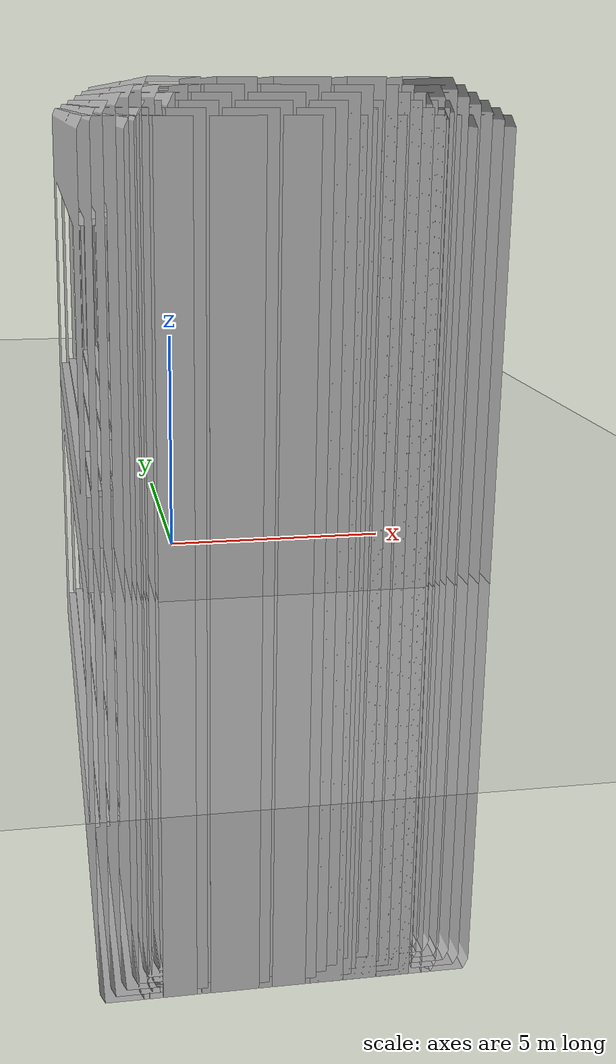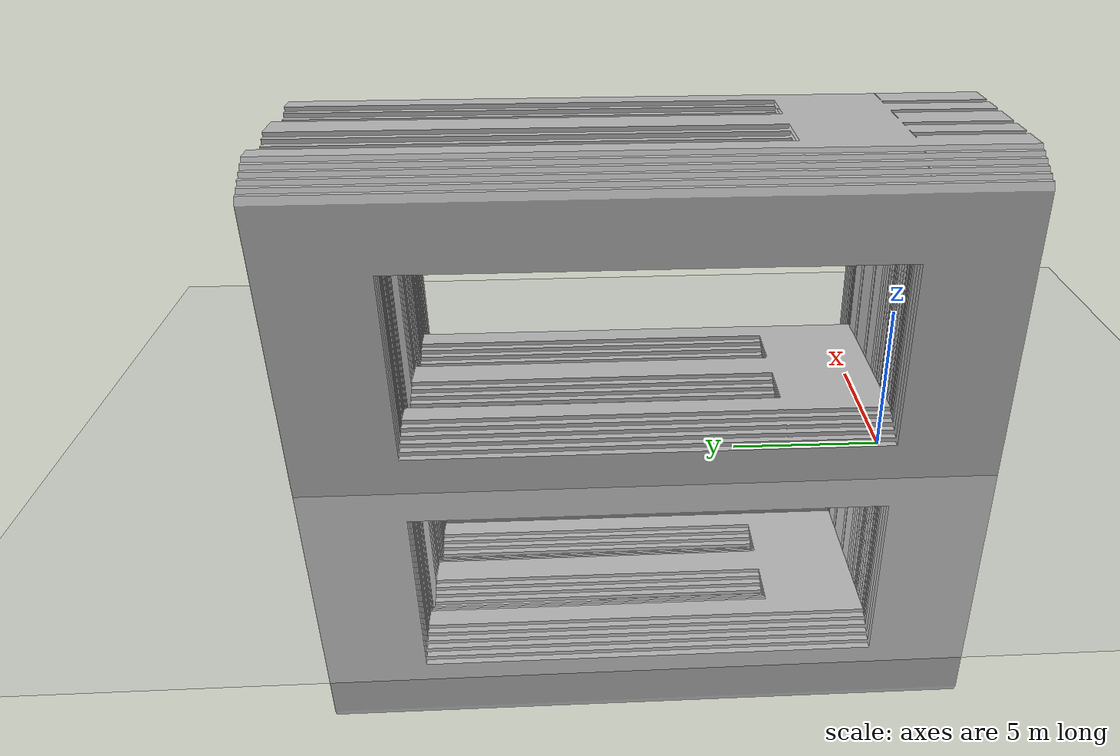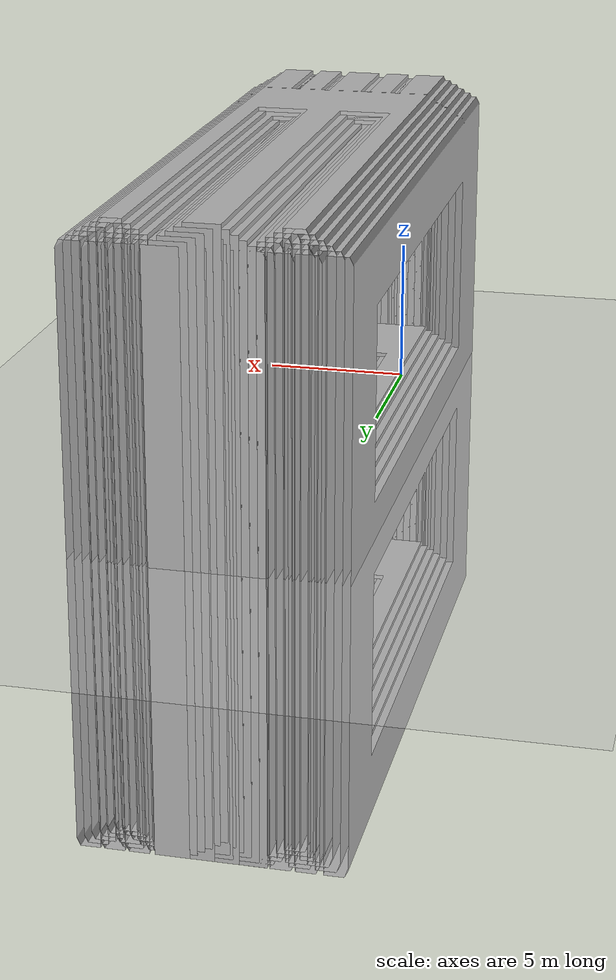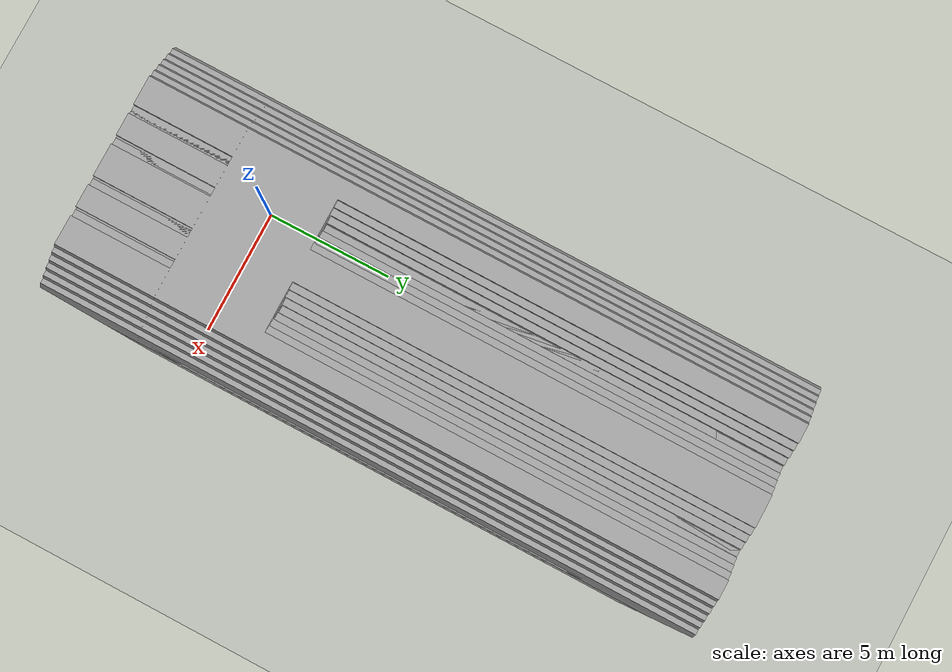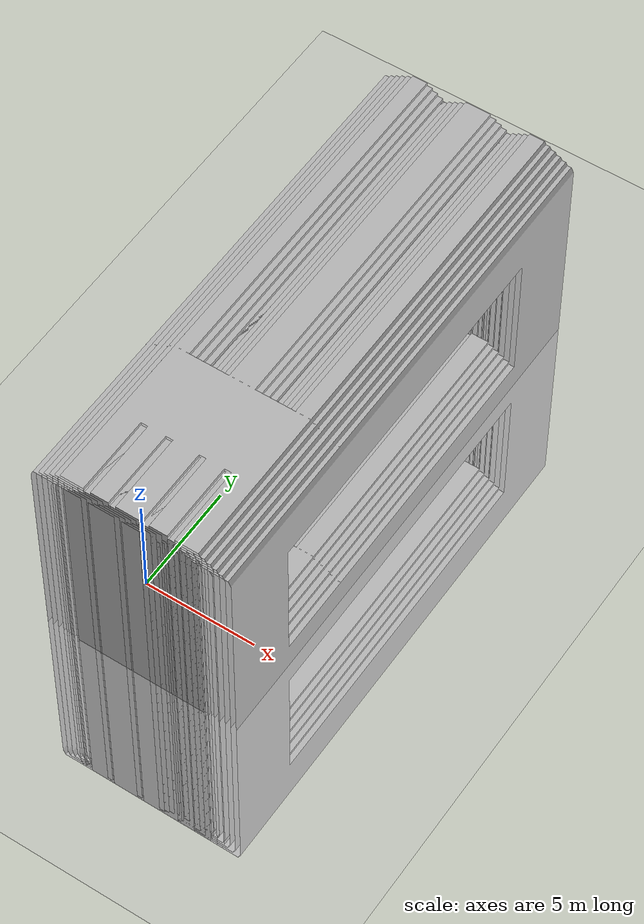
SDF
<?xml version="1.0" ?>
<sdf version="1.4">
  <world name="default">
    <physics type='ode'>
      <gravity>0 0 -9.81</gravity>
      <!-- max step size has to be a multiple of the desired task rate-->
      <max_step_size>0.001</max_step_size>
      <real_time_factor>1</real_time_factor>
    </physics>
    <!-- A global light source -->
    <include>
      <uri>model://sun</uri>
    </include>
    <!-- A ground plane -->
    <include>
      <uri>model://ground_plane</uri>
    </include>
    <include>
      <name>pallet</name>
      <uri>model://pallet145mm</uri>
      <pose>1 0 0 0 0 3.14</pose>
    </include>
    <include>
      <name>pallet</name>
      <uri>model://pallet145mm</uri>
      <pose>1.9 0 0 0 0 3.14</pose>
    </include>
    <include>
      <name>pallet</name>
      <uri>model://pallet145mm</uri>
      <pose>2.7 0 0 0 0 3.14</pose>
    </include>
    <include>
      <name>pallet</name>
      <uri>model://pallet145mm</uri>
      <pose>3.5 0 0 0 0 3.14</pose>
    </include>
    <include>
      <name>pallet</name>
      <uri>model://pallet145mm</uri>
      <pose>1.25 0 0.145 0 0 3.14</pose>
    </include>
    <include>
      <name>pallet</name>
      <uri>model://pallet145mm</uri>
      <pose>2.1 0  0.145 0 0 3.14</pose>
    </include>
    <include>
      <name>pallet</name>
      <uri>model://pallet145mm</uri>
      <pose>3.25 0  0.145 0 0 3.14</pose>
    </include>
    <include>
      <name>pallet</name>
      <uri>model://pallet145mm</uri>
      <pose>1.5 0 0.29 0 0 3.14</pose>
    </include>
    <include>
      <name>pallet</name>
      <uri>model://pallet145mm</uri>
      <pose>2.2 0 0.29 0 0 3.14</pose>
    </include>
    <include>
      <name>pallet</name>
      <uri>model://pallet145mm</uri>
      <pose>3 0 0.29 0 0 3.14</pose>
    </include>
    <include>
      <name>pallet</name>
      <uri>model://pallet145mm</uri>
      <pose>1.75 0 0.435 0 0 3.14</pose>
    </include>
    <include>
      <name>pallet</name>
      <uri>model://pallet145mm</uri>
      <pose>2.75 0 0.435 0 0 3.14</pose>
    </include>
    <include>
      <name>pallet</name>
      <uri>model://pallet145mm</uri>
      <pose>2 0 0.58 0 0 3.14</pose>
    </include>
    <include>
      <name>pallet</name>
      <uri>model://pallet145mm</uri>
      <pose>2.5 0 0.58 0 0 3.14</pose>
    </include>
    <include>
      <name>pallet</name>
      <uri>model://pallet145mm</uri>
      <pose>2.25 0 0.725 0 0 3.14</pose>
    </include>
  </world>
</sdf>

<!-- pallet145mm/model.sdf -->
<sdf version="1.4">
	<model name="pallet145mm">
		<static>true</static>
		<link name="link">
			<pose>0 0 0.06 0 0 0</pose>
			<collision name="collision">
				<geometry>
					<mesh>
						<uri>model://pallet145mm/mesh/pallet.dae</uri>
						<scale>0.787 16 1.647</scale>
					</mesh>
				</geometry>

			</collision>
			<visual name="visual">
				<geometry>
					<mesh>
						<uri>model://pallet145mm/mesh/pallet.dae</uri>
						<scale>0.787 16 1.647</scale>
					</mesh>
				</geometry>
			</visual>
		</link>
	</model>
</sdf>
